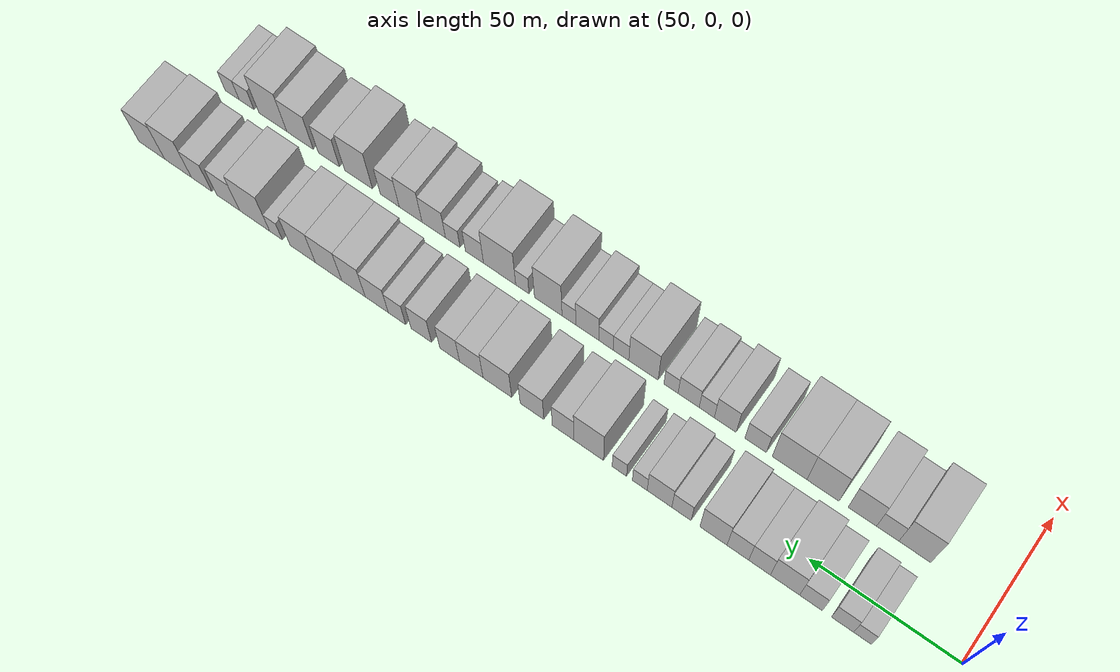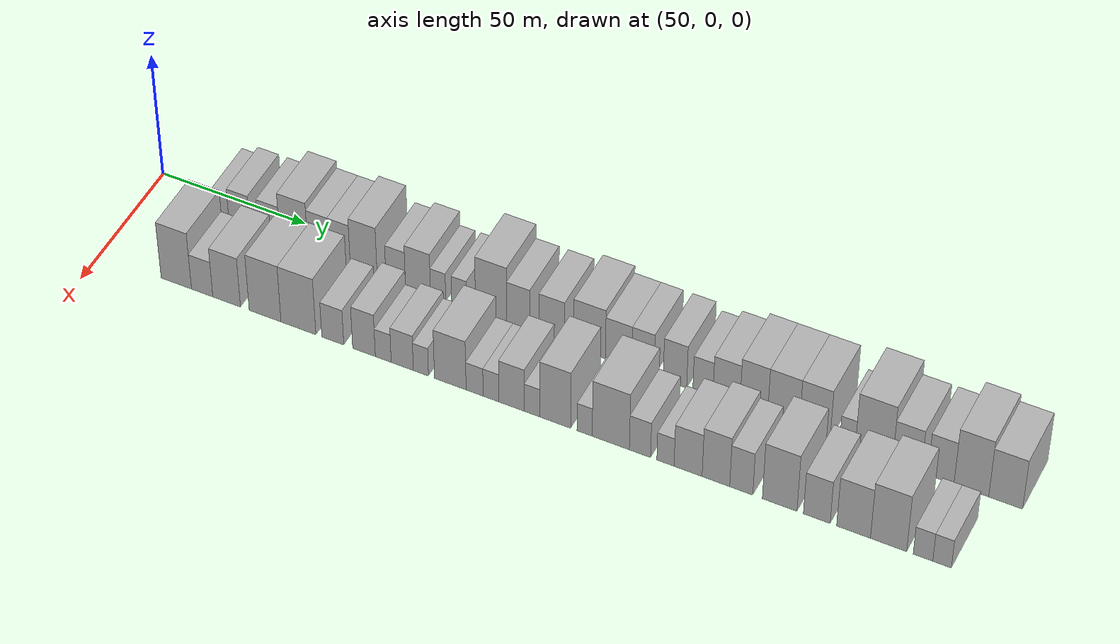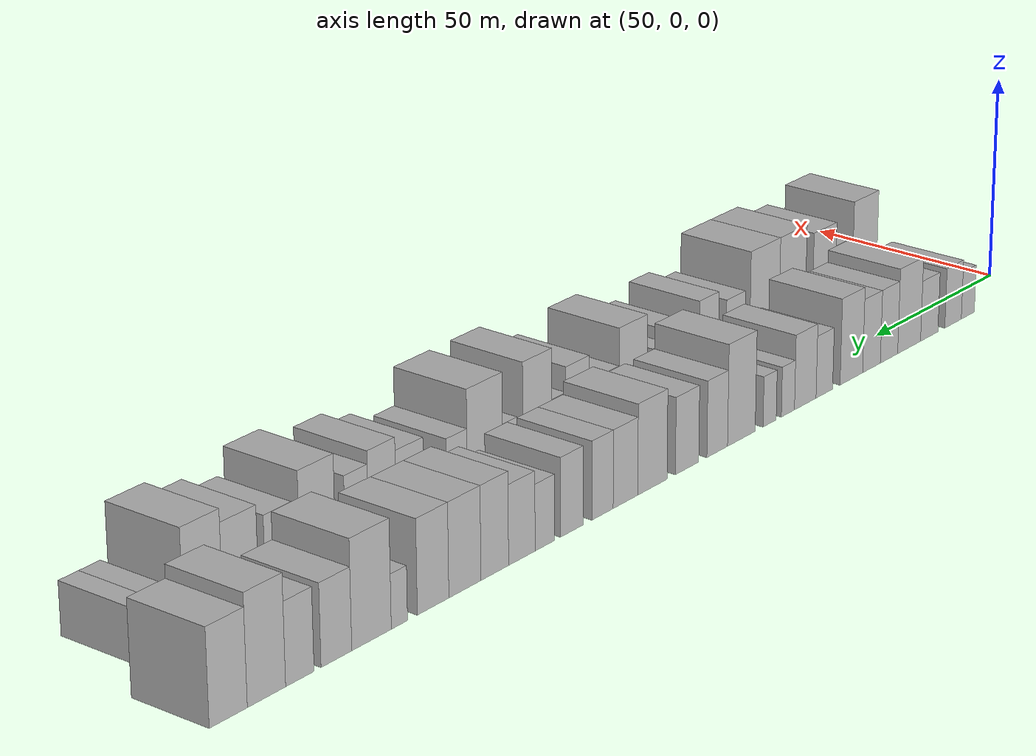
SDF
<sdf version="1.6">
 <world name="default">
  <model name="building_29">
   <static>1</static>
   <pose>50.0000 26.0019 0 0.000000 0.000000 0.000000</pose>
   <link name="link">
    <pose>0 0 6.00 0 0 0</pose>
    <collision name="collision"><geometry><box><size>20.0000 5.7797 12.0000</size></box></geometry></collision>
    <visual name="visual">
     <cast_shadows>0</cast_shadows>
     <geometry><box><size>20.0000 5.7797 12.0000</size></box></geometry>
     <material>
      <script>
       <uri>model://HANNAS_wall/materials/scripts</uri>
       <uri>model://HANNAS_wall/materials/textures</uri>
       <name>vrc/HANNAS_wall</name>
      </script>
     </material>
    </visual>
   </link>
  </model>
  <model name="building_30">
   <static>1</static>
   <pose>50.0000 32.5020 0 0.000000 0.000000 0.000000</pose>
   <link name="link">
    <pose>0 0 7.50 0 0 0</pose>
    <collision name="collision"><geometry><box><size>20.0000 7.2206 15.0000</size></box></geometry></collision>
    <visual name="visual">
     <cast_shadows>0</cast_shadows>
     <geometry><box><size>20.0000 7.2206 15.0000</size></box></geometry>
     <material>
      <script>
       <uri>model://HANNAS_wall/materials/scripts</uri>
       <uri>model://HANNAS_wall/materials/textures</uri>
       <name>vrc/HANNAS_wall</name>
      </script>
     </material>
    </visual>
   </link>
  </model>
  <model name="building_31">
   <static>1</static>
   <pose>50.0000 42.8494 0 0.000000 0.000000 0.000000</pose>
   <link name="link">
    <pose>0 0 7.50 0 0 0</pose>
    <collision name="collision"><geometry><box><size>20.0000 7.4743 15.0000</size></box></geometry></collision>
    <visual name="visual">
     <cast_shadows>0</cast_shadows>
     <geometry><box><size>20.0000 7.4743 15.0000</size></box></geometry>
     <material>
      <script>
       <uri>model://HANNAS_wall/materials/scripts</uri>
       <uri>model://HANNAS_wall/materials/textures</uri>
       <name>vrc/HANNAS_wall</name>
      </script>
     </material>
    </visual>
   </link>
  </model>
  <model name="building_32">
   <static>1</static>
   <pose>50.0000 51.4524 0 0.000000 0.000000 0.000000</pose>
   <link name="link">
    <pose>0 0 10.50 0 0 0</pose>
    <collision name="collision"><geometry><box><size>20.0000 9.7316 21.0000</size></box></geometry></collision>
    <visual name="visual">
     <cast_shadows>0</cast_shadows>
     <geometry><box><size>20.0000 9.7316 21.0000</size></box></geometry>
     <material>
      <script>
       <uri>model://HANNAS_wall/materials/scripts</uri>
       <uri>model://HANNAS_wall/materials/textures</uri>
       <name>vrc/HANNAS_wall</name>
      </script>
     </material>
    </visual>
   </link>
  </model>
  <model name="building_33">
   <static>1</static>
   <pose>50.0000 59.9531 0 0.000000 0.000000 0.000000</pose>
   <link name="link">
    <pose>0 0 9.00 0 0 0</pose>
    <collision name="collision"><geometry><box><size>20.0000 7.2698 18.0000</size></box></geometry></collision>
    <visual name="visual">
     <cast_shadows>0</cast_shadows>
     <geometry><box><size>20.0000 7.2698 18.0000</size></box></geometry>
     <material>
      <script>
       <uri>model://HANNAS_wall/materials/scripts</uri>
       <uri>model://HANNAS_wall/materials/textures</uri>
       <name>vrc/HANNAS_wall</name>
      </script>
     </material>
    </visual>
   </link>
  </model>
  <model name="building_34">
   <static>1</static>
   <pose>50.0000 67.2421 0 0.000000 0.000000 0.000000</pose>
   <link name="link">
    <pose>0 0 9.00 0 0 0</pose>
    <collision name="collision"><geometry><box><size>20.0000 7.3082 18.0000</size></box></geometry></collision>
    <visual name="visual">
     <cast_shadows>0</cast_shadows>
     <geometry><box><size>20.0000 7.3082 18.0000</size></box></geometry>
     <material>
      <script>
       <uri>model://HANNAS_wall/materials/scripts</uri>
       <uri>model://HANNAS_wall/materials/textures</uri>
       <name>vrc/HANNAS_wall</name>
      </script>
     </material>
    </visual>
   </link>
  </model>
  <model name="building_35">
   <static>1</static>
   <pose>50.0000 75.4865 0 0.000000 0.000000 0.000000</pose>
   <link name="link">
    <pose>0 0 10.50 0 0 0</pose>
    <collision name="collision"><geometry><box><size>20.0000 9.1805 21.0000</size></box></geometry></collision>
    <visual name="visual">
     <cast_shadows>0</cast_shadows>
     <geometry><box><size>20.0000 9.1805 21.0000</size></box></geometry>
     <material>
      <script>
       <uri>model://HANNAS_wall/materials/scripts</uri>
       <uri>model://HANNAS_wall/materials/textures</uri>
       <name>vrc/HANNAS_wall</name>
      </script>
     </material>
    </visual>
   </link>
  </model>
  <model name="building_36">
   <static>1</static>
   <pose>50.0000 86.3893 0 0.000000 0.000000 0.000000</pose>
   <link name="link">
    <pose>0 0 7.50 0 0 0</pose>
    <collision name="collision"><geometry><box><size>20.0000 6.6253 15.0000</size></box></geometry></collision>
    <visual name="visual">
     <cast_shadows>0</cast_shadows>
     <geometry><box><size>20.0000 6.6253 15.0000</size></box></geometry>
     <material>
      <script>
       <uri>model://HANNAS_wall/materials/scripts</uri>
       <uri>model://HANNAS_wall/materials/textures</uri>
       <name>vrc/HANNAS_wall</name>
      </script>
     </material>
    </visual>
   </link>
  </model>
  <model name="building_37">
   <static>1</static>
   <pose>50.0000 93.9520 0 0.000000 0.000000 0.000000</pose>
   <link name="link">
    <pose>0 0 9.00 0 0 0</pose>
    <collision name="collision"><geometry><box><size>20.0000 8.5001 18.0000</size></box></geometry></collision>
    <visual name="visual">
     <cast_shadows>0</cast_shadows>
     <geometry><box><size>20.0000 8.5001 18.0000</size></box></geometry>
     <material>
      <script>
       <uri>model://HANNAS_wall/materials/scripts</uri>
       <uri>model://HANNAS_wall/materials/textures</uri>
       <name>vrc/HANNAS_wall</name>
      </script>
     </material>
    </visual>
   </link>
  </model>
  <model name="building_38">
   <static>1</static>
   <pose>50.0000 100.7623 0 0.000000 0.000000 0.000000</pose>
   <link name="link">
    <pose>0 0 6.00 0 0 0</pose>
    <collision name="collision"><geometry><box><size>20.0000 5.1205 12.0000</size></box></geometry></collision>
    <visual name="visual">
     <cast_shadows>0</cast_shadows>
     <geometry><box><size>20.0000 5.1205 12.0000</size></box></geometry>
     <material>
      <script>
       <uri>model://HANNAS_wall/materials/scripts</uri>
       <uri>model://HANNAS_wall/materials/textures</uri>
       <name>vrc/HANNAS_wall</name>
      </script>
     </material>
    </visual>
   </link>
  </model>
  <model name="building_39">
   <static>1</static>
   <pose>50.0000 107.8391 0 0.000000 0.000000 0.000000</pose>
   <link name="link">
    <pose>0 0 6.00 0 0 0</pose>
    <collision name="collision"><geometry><box><size>20.0000 5.0329 12.0000</size></box></geometry></collision>
    <visual name="visual">
     <cast_shadows>0</cast_shadows>
     <geometry><box><size>20.0000 5.0329 12.0000</size></box></geometry>
     <material>
      <script>
       <uri>model://HANNAS_wall/materials/scripts</uri>
       <uri>model://HANNAS_wall/materials/textures</uri>
       <name>vrc/HANNAS_wall</name>
      </script>
     </material>
    </visual>
   </link>
  </model>
  <model name="building_40">
   <static>1</static>
   <pose>50.0000 118.5804 0 0.000000 0.000000 0.000000</pose>
   <link name="link">
    <pose>0 0 12.00 0 0 0</pose>
    <collision name="collision"><geometry><box><size>20.0000 10.4498 24.0000</size></box></geometry></collision>
    <visual name="visual">
     <cast_shadows>0</cast_shadows>
     <geometry><box><size>20.0000 10.4498 24.0000</size></box></geometry>
     <material>
      <script>
       <uri>model://HANNAS_wall/materials/scripts</uri>
       <uri>model://HANNAS_wall/materials/textures</uri>
       <name>vrc/HANNAS_wall</name>
      </script>
     </material>
    </visual>
   </link>
  </model>
  <model name="building_41">
   <static>1</static>
   <pose>50.0000 127.6384 0 0.000000 0.000000 0.000000</pose>
   <link name="link">
    <pose>0 0 9.00 0 0 0</pose>
    <collision name="collision"><geometry><box><size>20.0000 7.6661 18.0000</size></box></geometry></collision>
    <visual name="visual">
     <cast_shadows>0</cast_shadows>
     <geometry><box><size>20.0000 7.6661 18.0000</size></box></geometry>
     <material>
      <script>
       <uri>model://HANNAS_wall/materials/scripts</uri>
       <uri>model://HANNAS_wall/materials/textures</uri>
       <name>vrc/HANNAS_wall</name>
      </script>
     </material>
    </visual>
   </link>
  </model>
  <model name="building_42">
   <static>1</static>
   <pose>50.0000 138.7081 0 0.000000 0.000000 0.000000</pose>
   <link name="link">
    <pose>0 0 9.00 0 0 0</pose>
    <collision name="collision"><geometry><box><size>20.0000 8.4734 18.0000</size></box></geometry></collision>
    <visual name="visual">
     <cast_shadows>0</cast_shadows>
     <geometry><box><size>20.0000 8.4734 18.0000</size></box></geometry>
     <material>
      <script>
       <uri>model://HANNAS_wall/materials/scripts</uri>
       <uri>model://HANNAS_wall/materials/textures</uri>
       <name>vrc/HANNAS_wall</name>
      </script>
     </material>
    </visual>
   </link>
  </model>
  <model name="building_43">
   <static>1</static>
   <pose>50.0000 151.1465 0 0.000000 0.000000 0.000000</pose>
   <link name="link">
    <pose>0 0 10.50 0 0 0</pose>
    <collision name="collision"><geometry><box><size>20.0000 10.4034 21.0000</size></box></geometry></collision>
    <visual name="visual">
     <cast_shadows>0</cast_shadows>
     <geometry><box><size>20.0000 10.4034 21.0000</size></box></geometry>
     <material>
      <script>
       <uri>model://HANNAS_wall/materials/scripts</uri>
       <uri>model://HANNAS_wall/materials/textures</uri>
       <name>vrc/HANNAS_wall</name>
      </script>
     </material>
    </visual>
   </link>
  </model>
  <model name="building_44">
   <static>1</static>
   <pose>50.0000 160.6406 0 0.000000 0.000000 0.000000</pose>
   <link name="link">
    <pose>0 0 9.00 0 0 0</pose>
    <collision name="collision"><geometry><box><size>20.0000 8.5848 18.0000</size></box></geometry></collision>
    <visual name="visual">
     <cast_shadows>0</cast_shadows>
     <geometry><box><size>20.0000 8.5848 18.0000</size></box></geometry>
     <material>
      <script>
       <uri>model://HANNAS_wall/materials/scripts</uri>
       <uri>model://HANNAS_wall/materials/textures</uri>
       <name>vrc/HANNAS_wall</name>
      </script>
     </material>
    </visual>
   </link>
  </model>
  <model name="building_45">
   <static>1</static>
   <pose>50.0000 168.5676 0 0.000000 0.000000 0.000000</pose>
   <link name="link">
    <pose>0 0 9.00 0 0 0</pose>
    <collision name="collision"><geometry><box><size>20.0000 7.2692 18.0000</size></box></geometry></collision>
    <visual name="visual">
     <cast_shadows>0</cast_shadows>
     <geometry><box><size>20.0000 7.2692 18.0000</size></box></geometry>
     <material>
      <script>
       <uri>model://HANNAS_wall/materials/scripts</uri>
       <uri>model://HANNAS_wall/materials/textures</uri>
       <name>vrc/HANNAS_wall</name>
      </script>
     </material>
    </visual>
   </link>
  </model>
  <model name="building_46">
   <static>1</static>
   <pose>50.0000 179.0036 0 0.000000 0.000000 0.000000</pose>
   <link name="link">
    <pose>0 0 9.00 0 0 0</pose>
    <collision name="collision"><geometry><box><size>20.0000 7.6027 18.0000</size></box></geometry></collision>
    <visual name="visual">
     <cast_shadows>0</cast_shadows>
     <geometry><box><size>20.0000 7.6027 18.0000</size></box></geometry>
     <material>
      <script>
       <uri>model://HANNAS_wall/materials/scripts</uri>
       <uri>model://HANNAS_wall/materials/textures</uri>
       <name>vrc/HANNAS_wall</name>
      </script>
     </material>
    </visual>
   </link>
  </model>
  <model name="building_47">
   <static>1</static>
   <pose>50.0000 188.0357 0 0.000000 0.000000 0.000000</pose>
   <link name="link">
    <pose>0 0 7.50 0 0 0</pose>
    <collision name="collision"><geometry><box><size>20.0000 6.4615 15.0000</size></box></geometry></collision>
    <visual name="visual">
     <cast_shadows>0</cast_shadows>
     <geometry><box><size>20.0000 6.4615 15.0000</size></box></geometry>
     <material>
      <script>
       <uri>model://HANNAS_wall/materials/scripts</uri>
       <uri>model://HANNAS_wall/materials/textures</uri>
       <name>vrc/HANNAS_wall</name>
      </script>
     </material>
    </visual>
   </link>
  </model>
  <model name="building_48">
   <static>1</static>
   <pose>50.0000 195.5984 0 0.000000 0.000000 0.000000</pose>
   <link name="link">
    <pose>0 0 9.00 0 0 0</pose>
    <collision name="collision"><geometry><box><size>20.0000 8.6639 18.0000</size></box></geometry></collision>
    <visual name="visual">
     <cast_shadows>0</cast_shadows>
     <geometry><box><size>20.0000 8.6639 18.0000</size></box></geometry>
     <material>
      <script>
       <uri>model://HANNAS_wall/materials/scripts</uri>
       <uri>model://HANNAS_wall/materials/textures</uri>
       <name>vrc/HANNAS_wall</name>
      </script>
     </material>
    </visual>
   </link>
  </model>
  <model name="building_49">
   <static>1</static>
   <pose>50.0000 204.3596 0 0.000000 0.000000 0.000000</pose>
   <link name="link">
    <pose>0 0 10.50 0 0 0</pose>
    <collision name="collision"><geometry><box><size>20.0000 8.8585 21.0000</size></box></geometry></collision>
    <visual name="visual">
     <cast_shadows>0</cast_shadows>
     <geometry><box><size>20.0000 8.8585 21.0000</size></box></geometry>
     <material>
      <script>
       <uri>model://HANNAS_wall/materials/scripts</uri>
       <uri>model://HANNAS_wall/materials/textures</uri>
       <name>vrc/HANNAS_wall</name>
      </script>
     </material>
    </visual>
   </link>
  </model>
  <model name="building_50">
   <static>1</static>
   <pose>50.0000 213.8407 0 0.000000 0.000000 0.000000</pose>
   <link name="link">
    <pose>0 0 10.50 0 0 0</pose>
    <collision name="collision"><geometry><box><size>20.0000 10.1037 21.0000</size></box></geometry></collision>
    <visual name="visual">
     <cast_shadows>0</cast_shadows>
     <geometry><box><size>20.0000 10.1037 21.0000</size></box></geometry>
     <material>
      <script>
       <uri>model://HANNAS_wall/materials/scripts</uri>
       <uri>model://HANNAS_wall/materials/textures</uri>
       <name>vrc/HANNAS_wall</name>
      </script>
     </material>
    </visual>
   </link>
  </model>
  <model name="building_51">
   <static>1</static>
   <pose>50.0000 223.7538 0 0.000000 0.000000 0.000000</pose>
   <link name="link">
    <pose>0 0 10.50 0 0 0</pose>
    <collision name="collision"><geometry><box><size>20.0000 9.7225 21.0000</size></box></geometry></collision>
    <visual name="visual">
     <cast_shadows>0</cast_shadows>
     <geometry><box><size>20.0000 9.7225 21.0000</size></box></geometry>
     <material>
      <script>
       <uri>model://HANNAS_wall/materials/scripts</uri>
       <uri>model://HANNAS_wall/materials/textures</uri>
       <name>vrc/HANNAS_wall</name>
      </script>
     </material>
    </visual>
   </link>
  </model>
  <model name="building_52">
   <static>1</static>
   <pose>50.0000 234.0645 0 0.000000 0.000000 0.000000</pose>
   <link name="link">
    <pose>0 0 6.00 0 0 0</pose>
    <collision name="collision"><geometry><box><size>20.0000 4.8989 12.0000</size></box></geometry></collision>
    <visual name="visual">
     <cast_shadows>0</cast_shadows>
     <geometry><box><size>20.0000 4.8989 12.0000</size></box></geometry>
     <material>
      <script>
       <uri>model://HANNAS_wall/materials/scripts</uri>
       <uri>model://HANNAS_wall/materials/textures</uri>
       <name>vrc/HANNAS_wall</name>
      </script>
     </material>
    </visual>
   </link>
  </model>
  <model name="building_53">
   <static>1</static>
   <pose>50.0000 242.3845 0 0.000000 0.000000 0.000000</pose>
   <link name="link">
    <pose>0 0 12.00 0 0 0</pose>
    <collision name="collision"><geometry><box><size>20.0000 11.7411 24.0000</size></box></geometry></collision>
    <visual name="visual">
     <cast_shadows>0</cast_shadows>
     <geometry><box><size>20.0000 11.7411 24.0000</size></box></geometry>
     <material>
      <script>
       <uri>model://HANNAS_wall/materials/scripts</uri>
       <uri>model://HANNAS_wall/materials/textures</uri>
       <name>vrc/HANNAS_wall</name>
      </script>
     </material>
    </visual>
   </link>
  </model>
  <model name="building_54">
   <static>1</static>
   <pose>50.0000 252.7327 0 0.000000 0.000000 0.000000</pose>
   <link name="link">
    <pose>0 0 9.00 0 0 0</pose>
    <collision name="collision"><geometry><box><size>20.0000 8.9555 18.0000</size></box></geometry></collision>
    <visual name="visual">
     <cast_shadows>0</cast_shadows>
     <geometry><box><size>20.0000 8.9555 18.0000</size></box></geometry>
     <material>
      <script>
       <uri>model://HANNAS_wall/materials/scripts</uri>
       <uri>model://HANNAS_wall/materials/textures</uri>
       <name>vrc/HANNAS_wall</name>
      </script>
     </material>
    </visual>
   </link>
  </model>
  <model name="building_55">
   <static>1</static>
   <pose>50.0000 263.2553 0 0.000000 0.000000 0.000000</pose>
   <link name="link">
    <pose>0 0 9.00 0 0 0</pose>
    <collision name="collision"><geometry><box><size>20.0000 8.0896 18.0000</size></box></geometry></collision>
    <visual name="visual">
     <cast_shadows>0</cast_shadows>
     <geometry><box><size>20.0000 8.0896 18.0000</size></box></geometry>
     <material>
      <script>
       <uri>model://HANNAS_wall/materials/scripts</uri>
       <uri>model://HANNAS_wall/materials/textures</uri>
       <name>vrc/HANNAS_wall</name>
      </script>
     </material>
    </visual>
   </link>
  </model>
  <model name="building_56">
   <static>1</static>
   <pose>50.0000 272.6476 0 0.000000 0.000000 0.000000</pose>
   <link name="link">
    <pose>0 0 12.00 0 0 0</pose>
    <collision name="collision"><geometry><box><size>20.0000 10.6950 24.0000</size></box></geometry></collision>
    <visual name="visual">
     <cast_shadows>0</cast_shadows>
     <geometry><box><size>20.0000 10.6950 24.0000</size></box></geometry>
     <material>
      <script>
       <uri>model://HANNAS_wall/materials/scripts</uri>
       <uri>model://HANNAS_wall/materials/textures</uri>
       <name>vrc/HANNAS_wall</name>
      </script>
     </material>
    </visual>
   </link>
  </model>
  <model name="building_57">
   <static>1</static>
   <pose>50.0000 283.1999 0 0.000000 0.000000 0.000000</pose>
   <link name="link">
    <pose>0 0 10.50 0 0 0</pose>
    <collision name="collision"><geometry><box><size>20.0000 10.4095 21.0000</size></box></geometry></collision>
    <visual name="visual">
     <cast_shadows>0</cast_shadows>
     <geometry><box><size>20.0000 10.4095 21.0000</size></box></geometry>
     <material>
      <script>
       <uri>model://HANNAS_wall/materials/scripts</uri>
       <uri>model://HANNAS_wall/materials/textures</uri>
       <name>vrc/HANNAS_wall</name>
      </script>
     </material>
    </visual>
   </link>
  </model>
  <model name="building_88">
   <static>1</static>
   <pose>79.0000 26.8853 0 0.000000 0.000000 0.000000</pose>
   <link name="link">
    <pose>0 0 12.00 0 0 0</pose>
    <collision name="collision"><geometry><box><size>20.0000 10.5078 24.0000</size></box></geometry></collision>
    <visual name="visual">
     <cast_shadows>0</cast_shadows>
     <geometry><box><size>20.0000 10.5078 24.0000</size></box></geometry>
     <material>
      <script>
       <uri>model://HANNAS_wall/materials/scripts</uri>
       <uri>model://HANNAS_wall/materials/textures</uri>
       <name>vrc/HANNAS_wall</name>
      </script>
     </material>
    </visual>
   </link>
  </model>
  <model name="building_89">
   <static>1</static>
   <pose>79.0000 35.8158 0 0.000000 0.000000 0.000000</pose>
   <link name="link">
    <pose>0 0 7.50 0 0 0</pose>
    <collision name="collision"><geometry><box><size>20.0000 7.3532 15.0000</size></box></geometry></collision>
    <visual name="visual">
     <cast_shadows>0</cast_shadows>
     <geometry><box><size>20.0000 7.3532 15.0000</size></box></geometry>
     <material>
      <script>
       <uri>model://HANNAS_wall/materials/scripts</uri>
       <uri>model://HANNAS_wall/materials/textures</uri>
       <name>vrc/HANNAS_wall</name>
      </script>
     </material>
    </visual>
   </link>
  </model>
  <model name="building_90">
   <static>1</static>
   <pose>79.0000 44.2381 0 0.000000 0.000000 0.000000</pose>
   <link name="link">
    <pose>0 0 10.50 0 0 0</pose>
    <collision name="collision"><geometry><box><size>20.0000 9.4914 21.0000</size></box></geometry></collision>
    <visual name="visual">
     <cast_shadows>0</cast_shadows>
     <geometry><box><size>20.0000 9.4914 21.0000</size></box></geometry>
     <material>
      <script>
       <uri>model://HANNAS_wall/materials/scripts</uri>
       <uri>model://HANNAS_wall/materials/textures</uri>
       <name>vrc/HANNAS_wall</name>
      </script>
     </material>
    </visual>
   </link>
  </model>
  <model name="building_91">
   <static>1</static>
   <pose>79.0000 57.4024 0 0.000000 0.000000 0.000000</pose>
   <link name="link">
    <pose>0 0 12.00 0 0 0</pose>
    <collision name="collision"><geometry><box><size>20.0000 10.8370 24.0000</size></box></geometry></collision>
    <visual name="visual">
     <cast_shadows>0</cast_shadows>
     <geometry><box><size>20.0000 10.8370 24.0000</size></box></geometry>
     <material>
      <script>
       <uri>model://HANNAS_wall/materials/scripts</uri>
       <uri>model://HANNAS_wall/materials/textures</uri>
       <name>vrc/HANNAS_wall</name>
      </script>
     </material>
    </visual>
   </link>
  </model>
  <model name="building_92">
   <static>1</static>
   <pose>79.0000 68.7419 0 0.000000 0.000000 0.000000</pose>
   <link name="link">
    <pose>0 0 12.00 0 0 0</pose>
    <collision name="collision"><geometry><box><size>20.0000 11.8421 24.0000</size></box></geometry></collision>
    <visual name="visual">
     <cast_shadows>0</cast_shadows>
     <geometry><box><size>20.0000 11.8421 24.0000</size></box></geometry>
     <material>
      <script>
       <uri>model://HANNAS_wall/materials/scripts</uri>
       <uri>model://HANNAS_wall/materials/textures</uri>
       <name>vrc/HANNAS_wall</name>
      </script>
     </material>
    </visual>
   </link>
  </model>
  <model name="building_93">
   <static>1</static>
   <pose>79.0000 80.3644 0 0.000000 0.000000 0.000000</pose>
   <link name="link">
    <pose>0 0 7.50 0 0 0</pose>
    <collision name="collision"><geometry><box><size>20.0000 7.4029 15.0000</size></box></geometry></collision>
    <visual name="visual">
     <cast_shadows>0</cast_shadows>
     <geometry><box><size>20.0000 7.4029 15.0000</size></box></geometry>
     <material>
      <script>
       <uri>model://HANNAS_wall/materials/scripts</uri>
       <uri>model://HANNAS_wall/materials/textures</uri>
       <name>vrc/HANNAS_wall</name>
      </script>
     </material>
    </visual>
   </link>
  </model>
  <model name="building_94">
   <static>1</static>
   <pose>79.0000 90.8599 0 0.000000 0.000000 0.000000</pose>
   <link name="link">
    <pose>0 0 9.00 0 0 0</pose>
    <collision name="collision"><geometry><box><size>20.0000 7.5880 18.0000</size></box></geometry></collision>
    <visual name="visual">
     <cast_shadows>0</cast_shadows>
     <geometry><box><size>20.0000 7.5880 18.0000</size></box></geometry>
     <material>
      <script>
       <uri>model://HANNAS_wall/materials/scripts</uri>
       <uri>model://HANNAS_wall/materials/textures</uri>
       <name>vrc/HANNAS_wall</name>
      </script>
     </material>
    </visual>
   </link>
  </model>
  <model name="building_95">
   <static>1</static>
   <pose>79.0000 97.3081 0 0.000000 0.000000 0.000000</pose>
   <link name="link">
    <pose>0 0 6.00 0 0 0</pose>
    <collision name="collision"><geometry><box><size>20.0000 5.3083 12.0000</size></box></geometry></collision>
    <visual name="visual">
     <cast_shadows>0</cast_shadows>
     <geometry><box><size>20.0000 5.3083 12.0000</size></box></geometry>
     <material>
      <script>
       <uri>model://HANNAS_wall/materials/scripts</uri>
       <uri>model://HANNAS_wall/materials/textures</uri>
       <name>vrc/HANNAS_wall</name>
      </script>
     </material>
    </visual>
   </link>
  </model>
  <model name="building_96">
   <static>1</static>
   <pose>79.0000 103.6469 0 0.000000 0.000000 0.000000</pose>
   <link name="link">
    <pose>0 0 7.50 0 0 0</pose>
    <collision name="collision"><geometry><box><size>20.0000 7.3695 15.0000</size></box></geometry></collision>
    <visual name="visual">
     <cast_shadows>0</cast_shadows>
     <geometry><box><size>20.0000 7.3695 15.0000</size></box></geometry>
     <material>
      <script>
       <uri>model://HANNAS_wall/materials/scripts</uri>
       <uri>model://HANNAS_wall/materials/textures</uri>
       <name>vrc/HANNAS_wall</name>
      </script>
     </material>
    </visual>
   </link>
  </model>
  <model name="building_97">
   <static>1</static>
   <pose>79.0000 109.8429 0 0.000000 0.000000 0.000000</pose>
   <link name="link">
    <pose>0 0 6.00 0 0 0</pose>
    <collision name="collision"><geometry><box><size>20.0000 5.0224 12.0000</size></box></geometry></collision>
    <visual name="visual">
     <cast_shadows>0</cast_shadows>
     <geometry><box><size>20.0000 5.0224 12.0000</size></box></geometry>
     <material>
      <script>
       <uri>model://HANNAS_wall/materials/scripts</uri>
       <uri>model://HANNAS_wall/materials/textures</uri>
       <name>vrc/HANNAS_wall</name>
      </script>
     </material>
    </visual>
   </link>
  </model>
  <model name="building_98">
   <static>1</static>
   <pose>79.0000 119.5739 0 0.000000 0.000000 0.000000</pose>
   <link name="link">
    <pose>0 0 10.50 0 0 0</pose>
    <collision name="collision"><geometry><box><size>20.0000 10.4396 21.0000</size></box></geometry></collision>
    <visual name="visual">
     <cast_shadows>0</cast_shadows>
     <geometry><box><size>20.0000 10.4396 21.0000</size></box></geometry>
     <material>
      <script>
       <uri>model://HANNAS_wall/materials/scripts</uri>
       <uri>model://HANNAS_wall/materials/textures</uri>
       <name>vrc/HANNAS_wall</name>
      </script>
     </material>
    </visual>
   </link>
  </model>
  <model name="building_99">
   <static>1</static>
   <pose>79.0000 127.5968 0 0.000000 0.000000 0.000000</pose>
   <link name="link">
    <pose>0 0 6.00 0 0 0</pose>
    <collision name="collision"><geometry><box><size>20.0000 5.6062 12.0000</size></box></geometry></collision>
    <visual name="visual">
     <cast_shadows>0</cast_shadows>
     <geometry><box><size>20.0000 5.6062 12.0000</size></box></geometry>
     <material>
      <script>
       <uri>model://HANNAS_wall/materials/scripts</uri>
       <uri>model://HANNAS_wall/materials/textures</uri>
       <name>vrc/HANNAS_wall</name>
      </script>
     </material>
    </visual>
   </link>
  </model>
  <model name="building_100">
   <static>1</static>
   <pose>79.0000 132.9849 0 0.000000 0.000000 0.000000</pose>
   <link name="link">
    <pose>0 0 6.00 0 0 0</pose>
    <collision name="collision"><geometry><box><size>20.0000 5.1700 12.0000</size></box></geometry></collision>
    <visual name="visual">
     <cast_shadows>0</cast_shadows>
     <geometry><box><size>20.0000 5.1700 12.0000</size></box></geometry>
     <material>
      <script>
       <uri>model://HANNAS_wall/materials/scripts</uri>
       <uri>model://HANNAS_wall/materials/textures</uri>
       <name>vrc/HANNAS_wall</name>
      </script>
     </material>
    </visual>
   </link>
  </model>
  <model name="building_101">
   <static>1</static>
   <pose>79.0000 139.7289 0 0.000000 0.000000 0.000000</pose>
   <link name="link">
    <pose>0 0 9.00 0 0 0</pose>
    <collision name="collision"><geometry><box><size>20.0000 8.3180 18.0000</size></box></geometry></collision>
    <visual name="visual">
     <cast_shadows>0</cast_shadows>
     <geometry><box><size>20.0000 8.3180 18.0000</size></box></geometry>
     <material>
      <script>
       <uri>model://HANNAS_wall/materials/scripts</uri>
       <uri>model://HANNAS_wall/materials/textures</uri>
       <name>vrc/HANNAS_wall</name>
      </script>
     </material>
    </visual>
   </link>
  </model>
  <model name="building_102">
   <static>1</static>
   <pose>79.0000 146.3904 0 0.000000 0.000000 0.000000</pose>
   <link name="link">
    <pose>0 0 6.00 0 0 0</pose>
    <collision name="collision"><geometry><box><size>20.0000 5.0050 12.0000</size></box></geometry></collision>
    <visual name="visual">
     <cast_shadows>0</cast_shadows>
     <geometry><box><size>20.0000 5.0050 12.0000</size></box></geometry>
     <material>
      <script>
       <uri>model://HANNAS_wall/materials/scripts</uri>
       <uri>model://HANNAS_wall/materials/textures</uri>
       <name>vrc/HANNAS_wall</name>
      </script>
     </material>
    </visual>
   </link>
  </model>
  <model name="building_103">
   <static>1</static>
   <pose>79.0000 153.9198 0 0.000000 0.000000 0.000000</pose>
   <link name="link">
    <pose>0 0 12.00 0 0 0</pose>
    <collision name="collision"><geometry><box><size>20.0000 10.0537 24.0000</size></box></geometry></collision>
    <visual name="visual">
     <cast_shadows>0</cast_shadows>
     <geometry><box><size>20.0000 10.0537 24.0000</size></box></geometry>
     <material>
      <script>
       <uri>model://HANNAS_wall/materials/scripts</uri>
       <uri>model://HANNAS_wall/materials/textures</uri>
       <name>vrc/HANNAS_wall</name>
      </script>
     </material>
    </visual>
   </link>
  </model>
  <model name="building_104">
   <static>1</static>
   <pose>79.0000 163.4065 0 0.000000 0.000000 0.000000</pose>
   <link name="link">
    <pose>0 0 6.00 0 0 0</pose>
    <collision name="collision"><geometry><box><size>20.0000 4.9198 12.0000</size></box></geometry></collision>
    <visual name="visual">
     <cast_shadows>0</cast_shadows>
     <geometry><box><size>20.0000 4.9198 12.0000</size></box></geometry>
     <material>
      <script>
       <uri>model://HANNAS_wall/materials/scripts</uri>
       <uri>model://HANNAS_wall/materials/textures</uri>
       <name>vrc/HANNAS_wall</name>
      </script>
     </material>
    </visual>
   </link>
  </model>
  <model name="building_105">
   <static>1</static>
   <pose>79.0000 171.8258 0 0.000000 0.000000 0.000000</pose>
   <link name="link">
    <pose>0 0 12.00 0 0 0</pose>
    <collision name="collision"><geometry><box><size>20.0000 11.9187 24.0000</size></box></geometry></collision>
    <visual name="visual">
     <cast_shadows>0</cast_shadows>
     <geometry><box><size>20.0000 11.9187 24.0000</size></box></geometry>
     <material>
      <script>
       <uri>model://HANNAS_wall/materials/scripts</uri>
       <uri>model://HANNAS_wall/materials/textures</uri>
       <name>vrc/HANNAS_wall</name>
      </script>
     </material>
    </visual>
   </link>
  </model>
  <model name="building_106">
   <static>1</static>
   <pose>79.0000 181.1824 0 0.000000 0.000000 0.000000</pose>
   <link name="link">
    <pose>0 0 7.50 0 0 0</pose>
    <collision name="collision"><geometry><box><size>20.0000 6.7945 15.0000</size></box></geometry></collision>
    <visual name="visual">
     <cast_shadows>0</cast_shadows>
     <geometry><box><size>20.0000 6.7945 15.0000</size></box></geometry>
     <material>
      <script>
       <uri>model://HANNAS_wall/materials/scripts</uri>
       <uri>model://HANNAS_wall/materials/textures</uri>
       <name>vrc/HANNAS_wall</name>
      </script>
     </material>
    </visual>
   </link>
  </model>
  <model name="building_107">
   <static>1</static>
   <pose>79.0000 189.3140 0 0.000000 0.000000 0.000000</pose>
   <link name="link">
    <pose>0 0 6.00 0 0 0</pose>
    <collision name="collision"><geometry><box><size>20.0000 5.4687 12.0000</size></box></geometry></collision>
    <visual name="visual">
     <cast_shadows>0</cast_shadows>
     <geometry><box><size>20.0000 5.4687 12.0000</size></box></geometry>
     <material>
      <script>
       <uri>model://HANNAS_wall/materials/scripts</uri>
       <uri>model://HANNAS_wall/materials/textures</uri>
       <name>vrc/HANNAS_wall</name>
      </script>
     </material>
    </visual>
   </link>
  </model>
  <model name="building_108">
   <static>1</static>
   <pose>79.0000 196.4934 0 0.000000 0.000000 0.000000</pose>
   <link name="link">
    <pose>0 0 9.00 0 0 0</pose>
    <collision name="collision"><geometry><box><size>20.0000 8.8900 18.0000</size></box></geometry></collision>
    <visual name="visual">
     <cast_shadows>0</cast_shadows>
     <geometry><box><size>20.0000 8.8900 18.0000</size></box></geometry>
     <material>
      <script>
       <uri>model://HANNAS_wall/materials/scripts</uri>
       <uri>model://HANNAS_wall/materials/textures</uri>
       <name>vrc/HANNAS_wall</name>
      </script>
     </material>
    </visual>
   </link>
  </model>
  <model name="building_109">
   <static>1</static>
   <pose>79.0000 205.2998 0 0.000000 0.000000 0.000000</pose>
   <link name="link">
    <pose>0 0 10.50 0 0 0</pose>
    <collision name="collision"><geometry><box><size>20.0000 8.7229 21.0000</size></box></geometry></collision>
    <visual name="visual">
     <cast_shadows>0</cast_shadows>
     <geometry><box><size>20.0000 8.7229 21.0000</size></box></geometry>
     <material>
      <script>
       <uri>model://HANNAS_wall/materials/scripts</uri>
       <uri>model://HANNAS_wall/materials/textures</uri>
       <name>vrc/HANNAS_wall</name>
      </script>
     </material>
    </visual>
   </link>
  </model>
  <model name="building_110">
   <static>1</static>
   <pose>79.0000 213.2825 0 0.000000 0.000000 0.000000</pose>
   <link name="link">
    <pose>0 0 9.00 0 0 0</pose>
    <collision name="collision"><geometry><box><size>20.0000 7.2424 18.0000</size></box></geometry></collision>
    <visual name="visual">
     <cast_shadows>0</cast_shadows>
     <geometry><box><size>20.0000 7.2424 18.0000</size></box></geometry>
     <material>
      <script>
       <uri>model://HANNAS_wall/materials/scripts</uri>
       <uri>model://HANNAS_wall/materials/textures</uri>
       <name>vrc/HANNAS_wall</name>
      </script>
     </material>
    </visual>
   </link>
  </model>
  <model name="building_111">
   <static>1</static>
   <pose>79.0000 225.3073 0 0.000000 0.000000 0.000000</pose>
   <link name="link">
    <pose>0 0 12.00 0 0 0</pose>
    <collision name="collision"><geometry><box><size>20.0000 10.8073 24.0000</size></box></geometry></collision>
    <visual name="visual">
     <cast_shadows>0</cast_shadows>
     <geometry><box><size>20.0000 10.8073 24.0000</size></box></geometry>
     <material>
      <script>
       <uri>model://HANNAS_wall/materials/scripts</uri>
       <uri>model://HANNAS_wall/materials/textures</uri>
       <name>vrc/HANNAS_wall</name>
      </script>
     </material>
    </visual>
   </link>
  </model>
  <model name="building_112">
   <static>1</static>
   <pose>79.0000 236.8588 0 0.000000 0.000000 0.000000</pose>
   <link name="link">
    <pose>0 0 9.00 0 0 0</pose>
    <collision name="collision"><geometry><box><size>20.0000 8.2957 18.0000</size></box></geometry></collision>
    <visual name="visual">
     <cast_shadows>0</cast_shadows>
     <geometry><box><size>20.0000 8.2957 18.0000</size></box></geometry>
     <material>
      <script>
       <uri>model://HANNAS_wall/materials/scripts</uri>
       <uri>model://HANNAS_wall/materials/textures</uri>
       <name>vrc/HANNAS_wall</name>
      </script>
     </material>
    </visual>
   </link>
  </model>
  <model name="building_113">
   <static>1</static>
   <pose>79.0000 248.2169 0 0.000000 0.000000 0.000000</pose>
   <link name="link">
    <pose>0 0 10.50 0 0 0</pose>
    <collision name="collision"><geometry><box><size>20.0000 10.4206 21.0000</size></box></geometry></collision>
    <visual name="visual">
     <cast_shadows>0</cast_shadows>
     <geometry><box><size>20.0000 10.4206 21.0000</size></box></geometry>
     <material>
      <script>
       <uri>model://HANNAS_wall/materials/scripts</uri>
       <uri>model://HANNAS_wall/materials/textures</uri>
       <name>vrc/HANNAS_wall</name>
      </script>
     </material>
    </visual>
   </link>
  </model>
  <model name="building_114">
   <static>1</static>
   <pose>79.0000 258.9763 0 0.000000 0.000000 0.000000</pose>
   <link name="link">
    <pose>0 0 12.00 0 0 0</pose>
    <collision name="collision"><geometry><box><size>20.0000 11.0982 24.0000</size></box></geometry></collision>
    <visual name="visual">
     <cast_shadows>0</cast_shadows>
     <geometry><box><size>20.0000 11.0982 24.0000</size></box></geometry>
     <material>
      <script>
       <uri>model://HANNAS_wall/materials/scripts</uri>
       <uri>model://HANNAS_wall/materials/textures</uri>
       <name>vrc/HANNAS_wall</name>
      </script>
     </material>
    </visual>
   </link>
  </model>
  <model name="building_115">
   <static>1</static>
   <pose>79.0000 269.5089 0 0.000000 0.000000 0.000000</pose>
   <link name="link">
    <pose>0 0 6.00 0 0 0</pose>
    <collision name="collision"><geometry><box><size>20.0000 5.9671 12.0000</size></box></geometry></collision>
    <visual name="visual">
     <cast_shadows>0</cast_shadows>
     <geometry><box><size>20.0000 5.9671 12.0000</size></box></geometry>
     <material>
      <script>
       <uri>model://HANNAS_wall/materials/scripts</uri>
       <uri>model://HANNAS_wall/materials/textures</uri>
       <name>vrc/HANNAS_wall</name>
      </script>
     </material>
    </visual>
   </link>
  </model>
  <model name="building_116">
   <static>1</static>
   <pose>79.0000 275.3131 0 0.000000 0.000000 0.000000</pose>
   <link name="link">
    <pose>0 0 6.00 0 0 0</pose>
    <collision name="collision"><geometry><box><size>20.0000 5.6412 12.0000</size></box></geometry></collision>
    <visual name="visual">
     <cast_shadows>0</cast_shadows>
     <geometry><box><size>20.0000 5.6412 12.0000</size></box></geometry>
     <material>
      <script>
       <uri>model://HANNAS_wall/materials/scripts</uri>
       <uri>model://HANNAS_wall/materials/textures</uri>
       <name>vrc/HANNAS_wall</name>
      </script>
     </material>
    </visual>
   </link>
  </model>
 </world>
</sdf>
